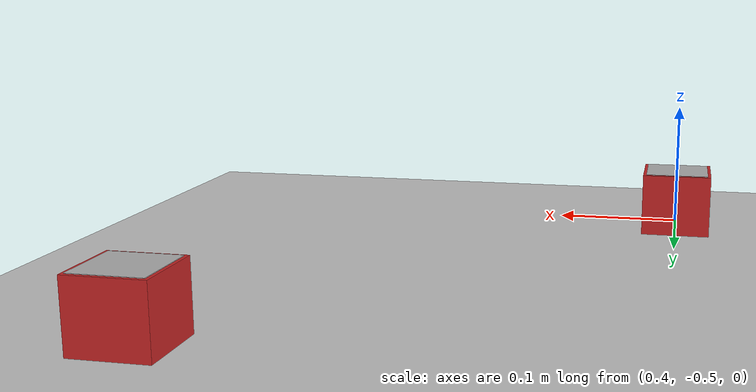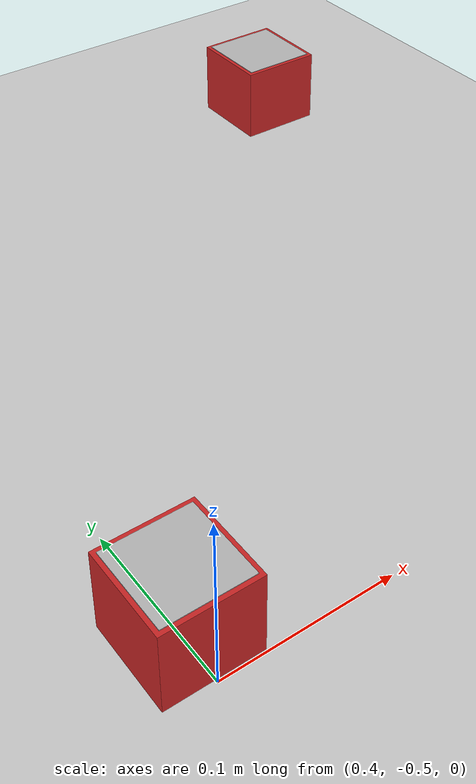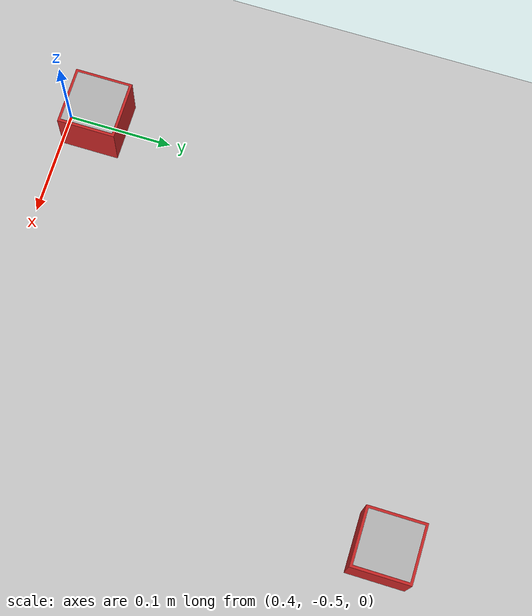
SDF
<sdf version="1.7">
 <world name="default">
  <light name="sun" type="directional">
   <pose>0 0 10 0 -0 0</pose>
   <diffuse>0.8 0.8 0.8 1</diffuse>
   <specular>0.2 0.2 0.2 1</specular>
   <attenuation>
    <range>1000</range>
    <constant>0.9</constant>
    <linear>0.01</linear>
    <quadratic>0.001</quadratic>
   </attenuation>
   <direction>-0.5 0.1 -0.9</direction>
   <spot><inner_angle>0</inner_angle><outer_angle>0</outer_angle><falloff>0</falloff></spot>
  </light>
  <model name="ground_plane">
   <static>1</static>
   <link name="link">
    <collision name="collision">
     <geometry><plane><normal>0 0 1</normal><size>100 100</size></plane></geometry>
     <surface>
      <contact><collide_bitmask>65535</collide_bitmask></contact>
      <friction><ode><mu>100</mu><mu2>50</mu2></ode></friction>
     </surface>
    </collision>
    <visual name="visual">
     <cast_shadows>0</cast_shadows>
     <geometry><plane><normal>0 0 1</normal><size>100 100</size></plane></geometry>
     <material>
      <script><uri>file://media/materials/scripts/gazebo.material</uri><name>Gazebo/Grey</name></script>
     </material>
    </visual>
   </link>
  </model>
  <gravity>0 0 -9.8</gravity>
  <magnetic_field>6e-06 2.3e-05 -4.2e-05</magnetic_field>
  <atmosphere type="adiabatic"/>
  <physics type="ode">
   <max_step_size>0.001</max_step_size>
   <real_time_factor>1</real_time_factor>
   <real_time_update_rate>1000</real_time_update_rate>
  </physics>
  <scene><ambient>0.4 0.4 0.4 1</ambient><background>0.7 0.7 0.7 1</background><shadows>1</shadows></scene>
  <spherical_coordinates>
   <surface_model>EARTH_WGS84</surface_model>
   <latitude_deg>0</latitude_deg>
   <longitude_deg>0</longitude_deg>
   <elevation>0</elevation>
   <heading_deg>0</heading_deg>
  </spherical_coordinates>
  <model name="Aruco tag0">
   <static>0</static>
   <link name="robot_link">
    <visual name="front_visual">
     <pose>0 0 0.025 0 -0 0</pose>
     <geometry><box><size>0.055 0.055 0.05</size></box></geometry>
     <material>
      <script><uri>file://media/materials/scripts/gazebo.material</uri><name>Gazebo/Red</name></script>
     </material>
    </visual>
    <collision name="collision">
     <pose>0 0 0.025 0 -0 0</pose>
     <geometry><box><size>0.05 0.05 0.05</size></box></geometry>
    </collision>
    <inertial>
     <inertia><ixx>1</ixx><ixy>0</ixy><ixz>0</ixz><iyy>1</iyy><iyz>0</iyz><izz>1</izz></inertia>
     <mass>1</mass>
    </inertial>
   </link>
   <joint name="link1joint" type="fixed"><child>link1</child><parent>robot_link</parent></joint>
   <link name="link1">
    <pose>0 0 0.05 0 -0 0</pose>
    <visual name="visual">
     <geometry><box><size>0.05 0.05 0.001</size></box></geometry>
     <material>
      <script><uri>/catkin_ws/src/models/tag_0/materials/scripts/tag.material</uri><name>aruco_tag_0</name></script>
     </material>
    </visual>
    <inertial>
     <inertia><ixx>1</ixx><ixy>0</ixy><ixz>0</ixz><iyy>1</iyy><iyz>0</iyz><izz>1</izz></inertia>
     <mass>1</mass>
    </inertial>
   </link>
   <pose>0.71244 -0.103883 0 -4e-06 -7e-06 -5e-06</pose>
  </model>
  <model name="Aruco tag0_0">
   <static>0</static>
   <link name="robot_link">
    <visual name="front_visual">
     <pose>0 0 0.025 0 -0 0</pose>
     <geometry><box><size>0.055 0.055 0.05</size></box></geometry>
     <material>
      <script><uri>file://media/materials/scripts/gazebo.material</uri><name>Gazebo/Red</name></script>
     </material>
    </visual>
    <collision name="collision">
     <pose>0 0 0.025 0 -0 0</pose>
     <geometry><box><size>0.05 0.05 0.05</size></box></geometry>
    </collision>
    <inertial>
     <inertia><ixx>1</ixx><ixy>0</ixy><ixz>0</ixz><iyy>1</iyy><iyz>0</iyz><izz>1</izz></inertia>
     <mass>1</mass>
    </inertial>
   </link>
   <joint name="link1joint" type="fixed"><child>link1</child><parent>robot_link</parent></joint>
   <link name="link1">
    <pose>0 0 0.05 0 -0 0</pose>
    <visual name="visual">
     <geometry><box><size>0.05 0.05 0.001</size></box></geometry>
     <material>
      <script><uri>/catkin_ws/src/models/tag_0/materials/scripts/tag.material</uri><name>aruco_tag_0</name></script>
     </material>
    </visual>
    <inertial>
     <inertia><ixx>1</ixx><ixy>0</ixy><ixz>0</ixz><iyy>1</iyy><iyz>0</iyz><izz>1</izz></inertia>
     <mass>1</mass>
    </inertial>
   </link>
   <pose>0.399785 -0.471209 0 5e-06 7e-06 8e-06</pose>
  </model>
 </world>
</sdf>
